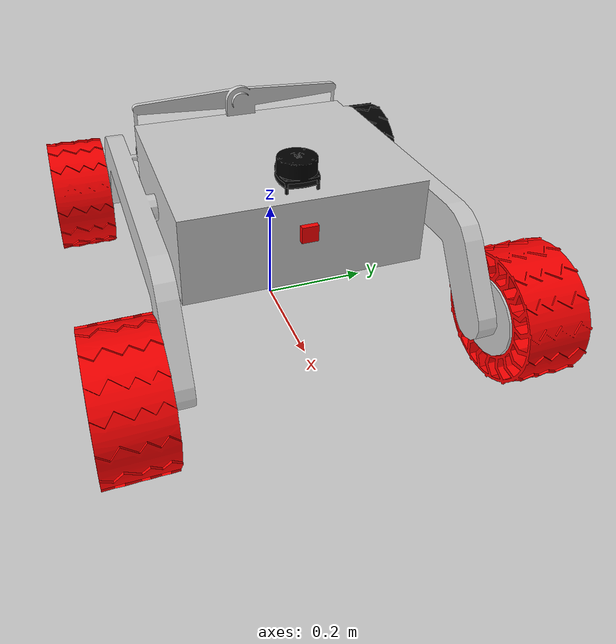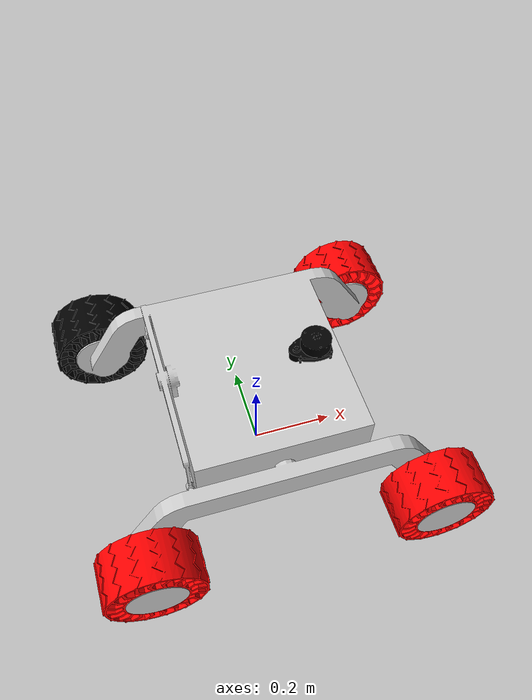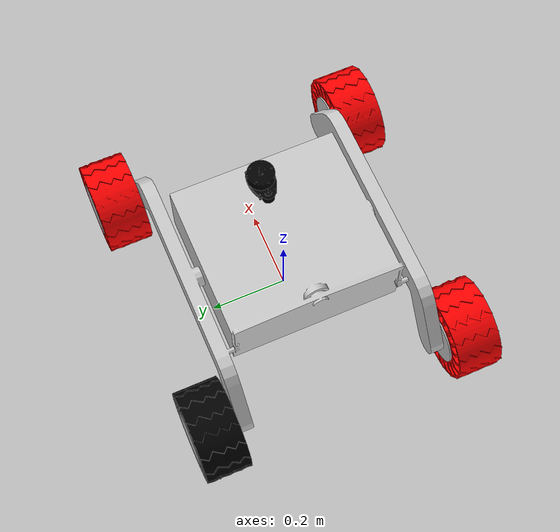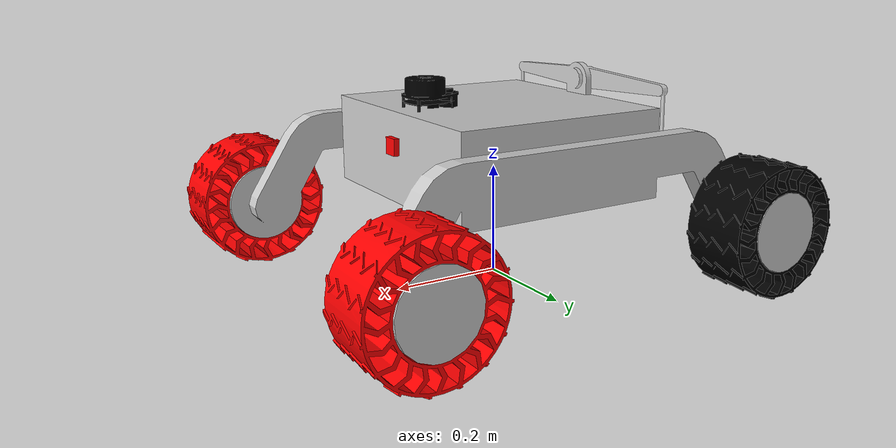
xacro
<?xml version="1.0"?>
<robot xmlns:xacro="http://www.ros.org/wiki/xacro" name="cengaver_rover">

    <xacro:include filename="$(find cengaver_rover_description)/models/cengaver_core.xacro" />
    <xacro:include filename="$(find cengaver_rover_description)/models/ros2_control.xacro" />
    <xacro:include filename="$(find cengaver_rover_description)/models/lidar.xacro" />
    <xacro:include filename="$(find cengaver_rover_description)/models/camera.xacro" />
    <xacro:include filename="$(find cengaver_rover_description)/models/imu.xacro" />
</robot>

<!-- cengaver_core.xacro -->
<robot xmlns:xacro="http://www.ros.org/wiki/xacro">

    <!-- MATERIALS -->

    <material name="chassis_material">
        <color rgba="0.8 0.8 0.8 1" />
        <specular rgba="0.5 0.5 0.5 1" />
    </material>

    <material name="red_wheel_material">
        <color rgba="1 0 0 1" />
    </material>

    <material name="black_wheel_material">
        <color rgba="0 0 0 1" />
    </material>

    <!-- BASE LINK -->

    <link name="base_link">
    </link>

    <joint name="base_footprint_joint" type="fixed">
        <parent link="base_link"/>
	    <child link="base_footprint"/>
	    <origin xyz="0 0 0" rpy="0 0 0"/>
    </joint>

    <link name="base_footprint">
    </link>

    <joint name="chassis_joint" type="fixed">
        <parent link="base_link" />
        <child link="chassis" />
        <origin xyz="0 0 0.18" />
    </joint>

    <link name="chassis">
        <visual>
            <origin
                xyz="0 0 -0.18"
                rpy="0 0 ${pi/2}" />
            <geometry>
                <mesh filename="package://cengaver_rover_description/meshes/base_link.STL" />
            </geometry>
            <material name="chassis_material" />
        </visual>
        <collision>
            <origin
                xyz="0 0 -0.18"
                rpy="0 0 ${pi/2}" />
            <geometry>
                <mesh filename="package://cengaver_rover_description/meshes/base_link.STL" />
            </geometry>
        </collision>
        <inertial>
            <origin
              xyz="-7.52548912075213E-10 0.00133985465192443 0.215427058661404"
              rpy="0 0 0" />
            <mass
              value="40.1379079681851" />
            <inertia
              ixx="1.16900142531114"
              ixy="0.00108521345983988"
              ixz="0.133695257924101"
              iyy="1.25971045307986"
              iyz="-0.00509655633734715"
              izz="2.16268381145349" />
          </inertial>

    </link>

    <gazebo reference="chassis">
        <material>PR2/Grey1   </material>
      </gazebo>

    <!-- FRONT LEFT WHEEL LINK -->

    <joint name="front_left_wheel_joint" type="continuous">
        <parent link="base_link" />
        <child link="front_left_wheel" />
        <origin
            xyz="0.338 0.394 0.117"
            rpy=" 0 -1.571 -1.571" />
        <axis xyz="0 0 1" />
    </joint>

    <link name="front_left_wheel">
        <visual>
            <origin
                xyz="0 0 0"
                rpy="0 0 0" />
            <geometry>
                <mesh filename="package://cengaver_rover_description/meshes/wheel1.STL" />
            </geometry>
            <material name="red_wheel_material" />
        </visual>
        <collision>
            <origin
                xyz="0 0 0"
                rpy="0 0 0" />
            <geometry>
                <mesh filename="package://cengaver_rover_description/meshes/wheel1.STL" />
            </geometry>
        </collision>
        <inertial>
            <origin
              xyz="0.000122612981227871 1.98732798040169E-06 -0.0576270454609041"
              rpy="0 0 0" />
            <mass
              value="1.37210716126655" />
            <inertia
              ixx="0.00789978615382761"
              ixy="6.69001163873593E-07"
              ixz="-1.06816776348498E-06"
              iyy="0.00786607684314157"
              iyz="-2.52943863764599E-08"
              izz="0.0127489505715837" />
          </inertial>
    </link>

    <gazebo reference="front_left_wheel">
        <material>Gazebo/Red</material>
      </gazebo>

    <!-- FRONT RIGHT WHEEL LINK -->

    <joint name="front_right_wheel_joint" type="continuous">
        <parent link="base_link" />
        <child link="front_right_wheel" />
        <origin
            xyz="0.338 -0.394 0.117"
            rpy=" 0 1.571 -1.571" />
        <axis xyz="0 0 -1" />
    </joint>

    <link name="front_right_wheel">
        <visual>
            <origin
                xyz="0 0 0"
                rpy="0 0 0" />
            <geometry>
                <mesh filename="package://cengaver_rover_description/meshes/wheel1.STL" />
            </geometry>
            <material name="red_wheel_material" />
        </visual>
        <collision>
            <origin
                xyz="0 0 0"
                rpy="0 0 0" />
            <geometry>
                <mesh filename="package://cengaver_rover_description/meshes/wheel1.STL" />
            </geometry>
        </collision>
        <inertial>
            <origin
              xyz="0.000122612982376591 1.98732819672864E-06 -0.0576270454601775"
              rpy="0 0 0" />
            <mass
              value="1.37210716127024" />
            <inertia
              ixx="0.00789978615355147"
              ixy="6.69001094577587E-07"
              ixz="-1.06816769246315E-06"
              iyy="0.00786607684342405"
              iyz="-2.52943345351912E-08"
              izz="0.0127489505715955" />
          </inertial>
    </link>

    <gazebo reference="front_right_wheel">
        <material>Gazebo/Red</material>
      </gazebo>

    <!-- BACK LEFT WHEEL LINK -->

    <joint name="back_left_wheel_joint" type="continuous">
        <parent link="base_link" />
        <child link="back_left_wheel" />
        <origin
            xyz="-0.338 0.394 0.117"
            rpy=" 0 -1.571 -1.571" />
        <axis xyz="0 0 1" />
    </joint>

    <link name="back_left_wheel">
        <visual>
            <origin
                xyz="0 0 0"
                rpy="0 0 0" />
            <geometry>
                <mesh filename="package://cengaver_rover_description/meshes/wheel1.STL" />
            </geometry>
            <material name="black_wheel_material" />
        </visual>
        <collision>
            <origin
                xyz="0 0 0"
                rpy="0 0 0" />
            <geometry>
                <mesh filename="package://cengaver_rover_description/meshes/wheel1.STL" />
            </geometry>
        </collision>
        <inertial>
            <origin
              xyz="0.000122612982376979 1.98732819572944E-06 -0.0576270454601775"
              rpy="0 0 0" />
            <mass
              value="1.37210716127023" />
            <inertia
              ixx="0.00789978615355137"
              ixy="-6.69001094576813E-07"
              ixz="1.06816769245835E-06"
              iyy="0.00786607684342403"
              iyz="-2.52943345498765E-08"
              izz="0.0127489505715954" />
          </inertial>
    </link>

    <gazebo reference="back_left_wheel">
        <material>Gazebo/Black</material>
      </gazebo>

    <!-- BACK RIGHT WHEEL LINK -->

    <joint name="back_right_wheel_joint" type="continuous">
        <parent link="base_link" />
        <child link="back_right_wheel" />
        <origin
            xyz="-0.338 -0.394 0.117"
            rpy=" 0 1.571 -1.571" />
        <axis xyz="0 0 -1" />
    </joint>

    <link name="back_right_wheel">
        <visual>
            <origin
                xyz="0 0 0"
                rpy="0 0 0" />
            <geometry>
                <mesh filename="package://cengaver_rover_description/meshes/wheel1.STL" />
            </geometry>
            <material name="red_wheel_material" />
        </visual>
        <collision>
            <origin
                xyz="0 0 0"
                rpy="0 0 0" />
            <geometry>
                <mesh filename="package://cengaver_rover_description/meshes/wheel1.STL" />
            </geometry>
        </collision>
        <inertial>
            <origin
              xyz="0.000122612982376147 1.98732819589598E-06 -0.0576270454601775"
              rpy="0 0 0" />
            <mass
              value="1.37210716127023" />
            <inertia
              ixx="0.00789978615355138"
              ixy="6.69001094539057E-07"
              ixz="-1.06816769244459E-06"
              iyy="0.007866076843424"
              iyz="-2.52943345308376E-08"
              izz="0.0127489505715954" />
          </inertial>
    </link>

    <gazebo reference="back_right_wheel">
        <material>Gazebo/Red</material>
      </gazebo>

</robot>

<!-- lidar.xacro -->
<robot xmlns:xacro="http://www.ros.org/wiki/xacro" >

    <material name="red_laser">
        <color rgba="1 0 0 1" />
    </material>

    <material name="black_lidar">
        <color rgba="0 0 0 1" />
    </material>

    <xacro:macro name="inertial_cylinder" params="mass radius length">
        <inertial>
            <mass value="${mass}"/>
            <origin xyz="0 0 ${length / 2}" rpy="0 0 0"/>
            <inertia ixx="${1/2 * mass * radius * radius}" iyy="${1/2 * mass * radius * radius}" izz="${1/12 * mass * (3 * radius * radius + length * length)}"/>
        </inertial>
    </xacro:macro>

    <joint name="laser_joint" type="fixed">
        <parent link="chassis"/>
        <child link="laser_frame"/>
        <origin xyz="0.14 0 0.175" rpy="0 0 ${pi}"/>
    </joint>

    <link name="laser_frame">
        <visual>
            <origin xyz="0 0 -0.01" rpy="0 0 0"/>
            <geometry>
                <mesh filename="package://cengaver_rover_description/meshes/rplidar_a1.STL" />
            </geometry>
            <material name="black_lidar"/>
        </visual>
        <collision>
            <origin xyz="0 0 -0.01" rpy="0 0 0"/>
            <geometry>
                <mesh filename="package://cengaver_rover_description/meshes/rplidar_a1.STL" />
            </geometry>
        </collision>
    </link>

    <gazebo reference="laser_frame">
        <material>Gazebo/Black</material>

        <sensor name="laser" type="ray">
            <pose> 0 0 0 0 0 0 </pose>
            <visualize>true</visualize>
            <update_rate>5.5</update_rate>
            <ray>
                <scan>
                    <horizontal>
                        <samples>363</samples>
                        <min_angle>${-pi}</min_angle>
                        <max_angle>${pi}</max_angle>
                    </horizontal>
                </scan>
                <range>
                    <min>0.15</min>
                    <max>12</max>
                    <resolution>0.05</resolution>
                </range>
                <noise>
                    <type>gaussian</type>
                    <mean>0.0</mean>
                    <stddev>0.01</stddev>
                  </noise>
            </ray>
            <plugin name="laser_controller" filename="libgazebo_ros_ray_sensor.so">
                <ros>
                    <argument>~/out:=scan_raw</argument>
                </ros>
                <output_type>sensor_msgs/LaserScan</output_type>
                <frame_name>laser_frame</frame_name>
            </plugin>
        </sensor>
    </gazebo>

</robot>

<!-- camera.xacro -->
<robot xmlns:xacro="http://www.ros.org/wiki/xacro" >

    <material name="red_camera">
        <color rgba="1 0 0 1" />
    </material>

    <joint name="camera_joint" type="fixed">
        <parent link="chassis"/>
        <child link="camera_link"/>
        <origin xyz="0.205 0 0.08" rpy="0 0 0"/>
    </joint>

    <link name="camera_link">
        <visual>
            <geometry>
                <box size="0.010 0.03 0.03"/>
            </geometry>
            <material name="red_camera"/>
        </visual>
        <colision>
            <geometry>
                <box size="0.010 0.03 0.03"/>
            </geometry>
        </colision>
    </link>

    <joint name="camera_optical_joint" type="fixed">
        <parent link="camera_link"/>
        <child link="camera_link_optical"/>
        <origin xyz="0 0 0" rpy="${-pi/2} 0 ${-pi/2}"/>
    </joint>

    <link name="camera_link_optical"></link>

    <gazebo reference="camera_link">
        <material>Gazebo/Red</material>

        <sensor name="camera" type="camera">
            <pose> 0 0 0 0 0 0 </pose>
            <visualize>true</visualize>
            <update_rate>30</update_rate>
            <camera>
                <horizontal_fov>1.256</horizontal_fov>
                <image>
                    <format>R8G8B8</format>
                    <width>640</width>
                    <height>480</height>
                </image>
                <clip>
                    <near>0.05</near>
                    <far>20.0</far>
                </clip>
                <noise>
                    <type>gaussian</type>
                    <mean>0.0</mean>
                    <stddev>0.007</stddev>
                  </noise>
            </camera>
            <plugin name="camera_controller" filename="libgazebo_ros_camera.so">
                <frame_name>camera_link_optical</frame_name>
                <hackBaseline>0.07</hackBaseline>
                <distortionK1>0.01</distortionK1>
                <distortionK2>0.01</distortionK2>
                <distortionK3>0.01</distortionK3>
                <distortionT1>0.01</distortionT1>
                <distortionT2>0.01</distortionT2>
            </plugin>
        </sensor>
    </gazebo>

</robot>

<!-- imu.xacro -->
<robot xmlns:xacro="http://www.ros.org/wiki/xacro">

  <joint name="imu_joint" type="fixed">
    <parent link="chassis" />
    <child link="imu_link" />
    <origin xyz="0 0 0" rpy="0 0 0" />
  </joint>

  <link name="imu_link">
  </link>

  <gazebo reference="imu_link">
    <sensor name="imu_sensor" type="imu">
      <plugin filename="libgazebo_ros_imu_sensor.so" name="imu_plugin">
        <ros>
          <remapping>~/out:=imu</remapping>
        </ros>
        <initial_orientation_as_reference>false</initial_orientation_as_reference>
      </plugin>
      <always_on>true</always_on>
      <update_rate>100</update_rate>
      <visualize>true</visualize>
      <imu>
        <angular_velocity>
          <x>
            <noise type="gaussian">
              <mean>0.0</mean>
              <stddev>0.0017464</stddev>
            </noise>
          </x>
          <y>
            <noise type="gaussian">
              <mean>0.0</mean>
              <stddev>0.0017464</stddev>
            </noise>
          </y>
          <z>
            <noise type="gaussian">
              <mean>0.0</mean>
              <stddev>0.0017464</stddev>
            </noise>
          </z>
        </angular_velocity>
        <linear_acceleration>
          <x>
            <noise type="gaussian">
              <mean>0.0</mean>
              <stddev>0.00821766</stddev>
            </noise>
          </x>
          <y>
            <noise type="gaussian">
              <mean>0.0</mean>
              <stddev>0.00821766</stddev>
            </noise>
          </y>
          <z>
            <noise type="gaussian">
              <mean>0.0</mean>
              <stddev>0.00821766</stddev>
            </noise>
          </z>
        </linear_acceleration>

      </imu>
    </sensor>

  </gazebo>

</robot>
